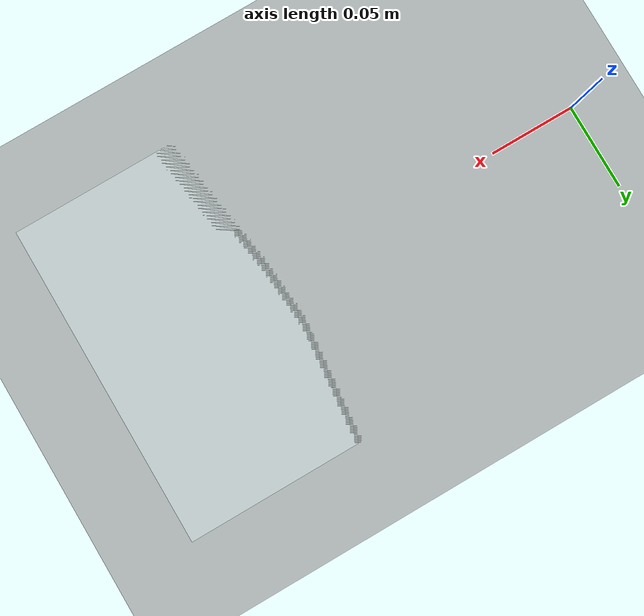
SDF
<?xml version="1.0"?>
<sdf version="1.8">
  <model name="table">
    <link name="table_base">
      <pose>0 0 -0.02 0 0 0</pose>
      <inertial>
        <pose>0 0 0 0 0 0</pose>
        <mass>1</mass>
        <inertia>
            <ixx>0.0835</ixx>
            <ixy>0</ixy>
            <ixz>0</ixz>
            <iyy>0.1667</iyy>
            <iyz>0</iyz>
            <izz>0.0835</izz>
        </inertia>
      </inertial>
      <visual name="base_visual">
        <pose>0 0 -0.02 0 0 0</pose>
        <geometry>
          <box>
            <size>2.0 1.0 0.04</size>
          </box>
        </geometry>
        <material>
          <ambient>0.3 0.3 0.3 0.7</ambient>
          <diffuse>0.7 0.7 0.7 0.7</diffuse>
          <specular>0.01 0.01 0.01 0.2</specular>
          <emissive>0 0 0 0.2</emissive>
        </material>
      </visual>
      <collision name="base_collision">
        <pose>0 0 -0.02 0 0 0</pose>
        <geometry>
          <box>
            <size>2.0 1.2 0.04</size>
          </box>
        </geometry>
        <drake:proximity_properties>
          <drake:rigid_hydroelastic/>
          <drake:mesh_resolution_hint>0.02</drake:mesh_resolution_hint>
          <drake:mu_static>0.1</drake:mu_static>
          <drake:mu_dynamic>0.1</drake:mu_dynamic>
        </drake:proximity_properties>
      </collision>
    </link>

    <joint name="weld_joint" type="fixed">
      <pose>0.0 0 0 0 0 0</pose>
      <parent>table_base</parent>
      <child>overlap</child>
    </joint>

    <link name="overlap">
      <pose relative_to="table_base">0.2 0. -0.02 0 0 0</pose>
      <inertial>
        <pose>0 0 0 0 0 0</pose>
        <mass>1</mass>
        <inertia>
            <ixx>0.0835</ixx>
            <ixy>0</ixy>
            <ixz>0</ixz>
            <iyy>0.1667</iyy>
            <iyz>0</iyz>
            <izz>0.0835</izz>
        </inertia>
      </inertial>
      <visual name="overlap_visual">
        <geometry>
          <box>
            <size>0.2 0.2 0.04</size>
          </box>
        </geometry>
        <material>
          <ambient>0.3 0.3 0.3 0.5</ambient>
          <diffuse>0.7 0.7 0.7 0.5</diffuse>
          <specular>0.01 0.01 0.01 0.2</specular>
          <emissive>0 0 0 0.2</emissive>
        </material>
      </visual>
      <collision name="overlap_collision">
        <geometry>
          <box>
            <size>0.2 0.2 0.04</size>
          </box>
        </geometry>
        <drake:proximity_properties>
          <drake:rigid_hydroelastic/>
          <drake:mesh_resolution_hint>0.02</drake:mesh_resolution_hint>
          <drake:mu_static>0.1</drake:mu_static>
          <drake:mu_dynamic>0.1</drake:mu_dynamic>
        </drake:proximity_properties>
      </collision>
    </link>

  </model>
</sdf>
